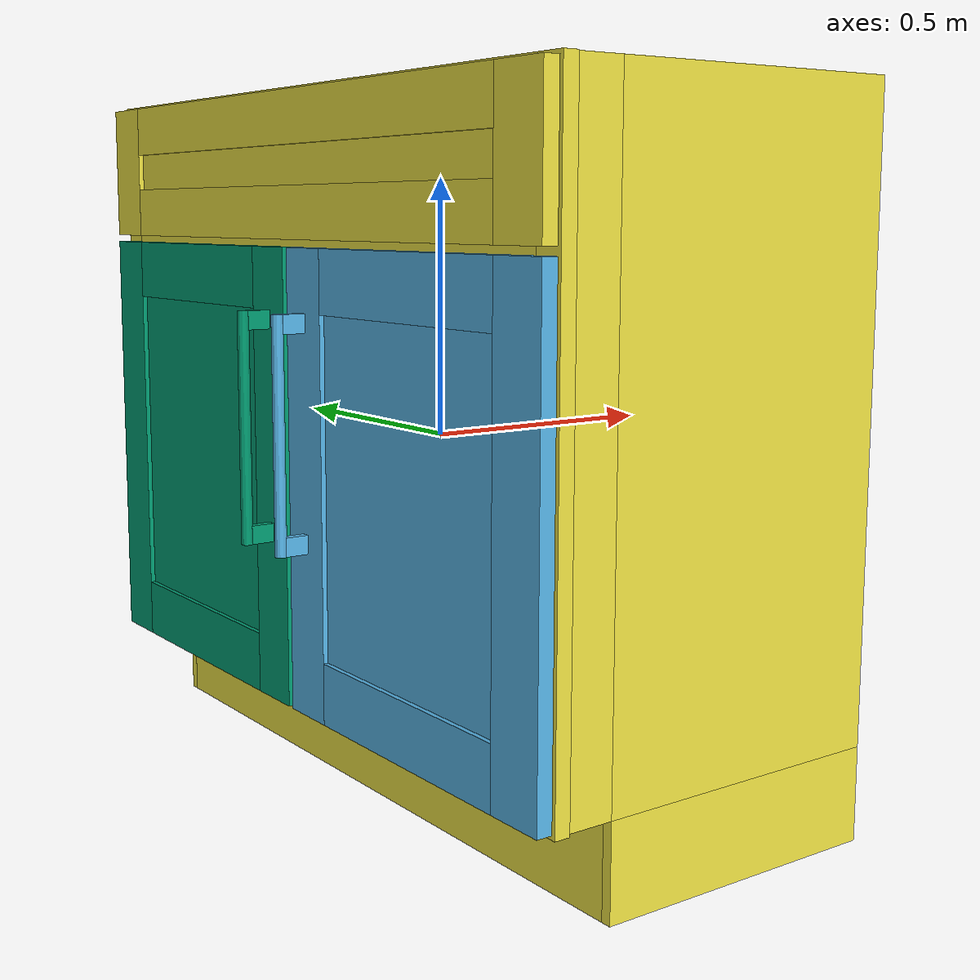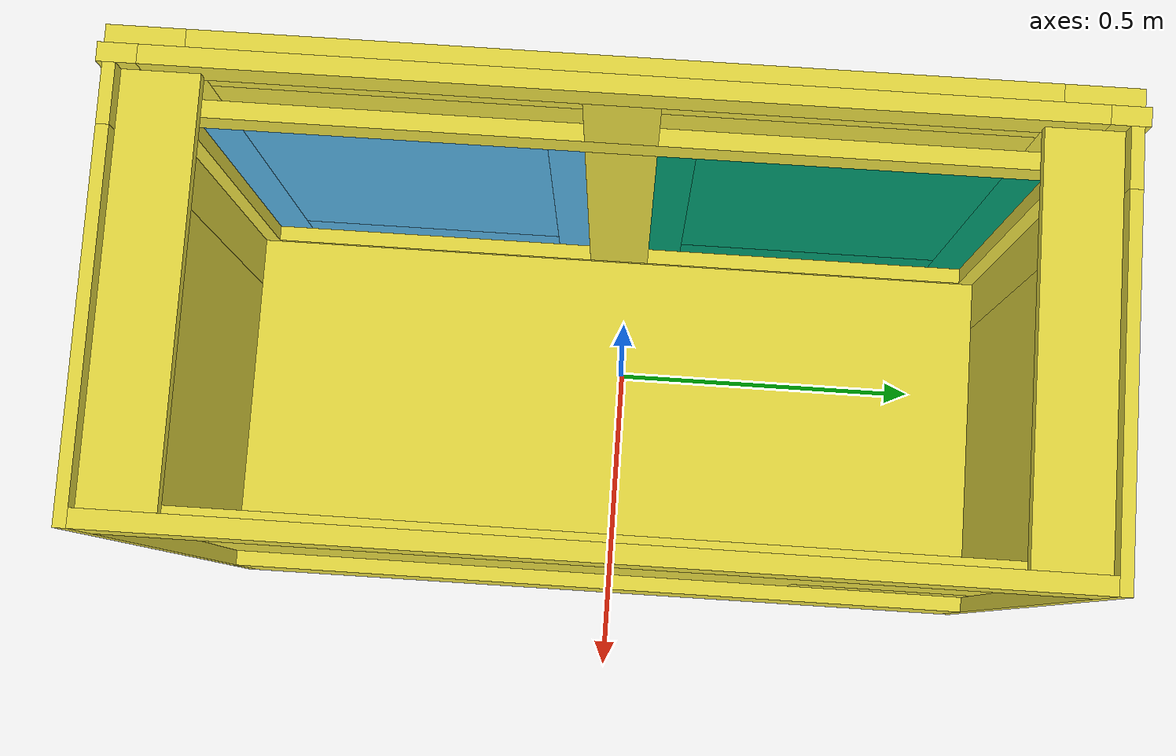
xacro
<?xml version="1.0" ?>
<robot name="cabinet_0" xmlns:xacro="http://ros.org/wiki/xacro">
	<xacro:macro name="default_inertial" params="mass">
    	<inertial>
      		<mass value="${mass}" />
      		<inertia ixx="1.0" ixy="0.0" ixz="0.0" iyy="1.0" iyz="0.0" izz="1.0" />
    	</inertial>
  	</xacro:macro>
	<link name="link"/>
	<link name="link_0">
		<visual name="cabinet_door_surface-11">
			<origin xyz="-0.7628867416512489 -0.6287140250205994 -0.33081486779329544"/>
			<geometry>
				<mesh filename="file://$(find instruct_to_policy)/models/cabinet_0/textured_objs/original-50.obj" />
			</geometry>
		</visual>
		<visual name="cabinet_door_surface-11">
			<origin xyz="-0.7628867416512489 -0.6287140250205994 -0.33081486779329544"/>
			<geometry>
				<mesh filename="file://$(find instruct_to_policy)/models/cabinet_0/textured_objs/original-45.obj"/>
			</geometry>
		</visual>
		<visual name="cabinet_door_surface-11">
			<origin xyz="-0.7628867416512489 -0.6287140250205994 -0.33081486779329544"/>
			<geometry>
				<mesh filename="file://$(find instruct_to_policy)/models/cabinet_0/textured_objs/original-47.obj"/>
			</geometry>
		</visual>
		<visual name="cabinet_door_surface-11">
			<origin xyz="-0.7628867416512489 -0.6287140250205994 -0.33081486779329544"/>
			<geometry>
				<mesh filename="file://$(find instruct_to_policy)/models/cabinet_0/textured_objs/original-46.obj"/>
			</geometry>
		</visual>
		<visual name="cabinet_door_surface-11">
			<origin xyz="-0.7628867416512489 -0.6287140250205994 -0.33081486779329544"/>
			<geometry>
				<mesh filename="file://$(find instruct_to_policy)/models/cabinet_0/textured_objs/original-48.obj"/>
			</geometry>
		</visual>
		<visual name="cabinet_door_surface-11">
			<origin xyz="-0.7628867416512489 -0.6287140250205994 -0.33081486779329544"/>
			<geometry>
				<mesh filename="file://$(find instruct_to_policy)/models/cabinet_0/textured_objs/original-51.obj"/>
			</geometry>
		</visual>
		<visual name="handle-12">
			<origin xyz="-0.7628867416512489 -0.6287140250205994 -0.33081486779329544"/>
			<geometry>
				<mesh filename="file://$(find instruct_to_policy)/models/cabinet_0/textured_objs/original-53.obj"/>
			</geometry>
		</visual>
		<visual name="handle-12">
			<origin xyz="-0.7628867416512489 -0.6287140250205994 -0.33081486779329544"/>
			<geometry>
				<mesh filename="file://$(find instruct_to_policy)/models/cabinet_0/textured_objs/original-55.obj"/>
			</geometry>
		</visual>
		<visual name="handle-12">
			<origin xyz="-0.7628867416512489 -0.6287140250205994 -0.33081486779329544"/>
			<geometry>
				<mesh filename="file://$(find instruct_to_policy)/models/cabinet_0/textured_objs/original-54.obj"/>
			</geometry>
		</visual>
		<collision>
			<origin xyz="-0.7628867416512489 -0.6287140250205994 -0.33081486779329544"/>
			<geometry>
				<mesh filename="file://$(find instruct_to_policy)/models/cabinet_0/textured_objs/original-50.obj"/>
			</geometry>
		</collision>
		<collision>
			<origin xyz="-0.7628867416512489 -0.6287140250205994 -0.33081486779329544"/>
			<geometry>
				<mesh filename="file://$(find instruct_to_policy)/models/cabinet_0/textured_objs/original-45.obj"/>
			</geometry>
		</collision>
		<collision>
			<origin xyz="-0.7628867416512489 -0.6287140250205994 -0.33081486779329544"/>
			<geometry>
				<mesh filename="file://$(find instruct_to_policy)/models/cabinet_0/textured_objs/original-47.obj"/>
			</geometry>
		</collision>
		<collision>
			<origin xyz="-0.7628867416512489 -0.6287140250205994 -0.33081486779329544"/>
			<geometry>
				<mesh filename="file://$(find instruct_to_policy)/models/cabinet_0/textured_objs/original-46.obj"/>
			</geometry>
		</collision>
		<collision>
			<origin xyz="-0.7628867416512489 -0.6287140250205994 -0.33081486779329544"/>
			<geometry>
				<mesh filename="file://$(find instruct_to_policy)/models/cabinet_0/textured_objs/original-48.obj"/>
			</geometry>
		</collision>
		<collision>
			<origin xyz="-0.7628867416512489 -0.6287140250205994 -0.33081486779329544"/>
			<geometry>
				<mesh filename="file://$(find instruct_to_policy)/models/cabinet_0/textured_objs/original-51.obj"/>
			</geometry>
		</collision>
		<collision>
			<origin xyz="-0.7628867416512489 -0.6287140250205994 -0.33081486779329544"/>
			<geometry>
				<mesh filename="file://$(find instruct_to_policy)/models/cabinet_0/textured_objs/original-53.obj"/>
			</geometry>
		</collision>
		<collision>
			<origin xyz="-0.7628867416512489 -0.6287140250205994 -0.33081486779329544"/>
			<geometry>
				<mesh filename="file://$(find instruct_to_policy)/models/cabinet_0/textured_objs/original-55.obj"/>
			</geometry>
		</collision>
		<collision>
			<origin xyz="-0.7628867416512489 -0.6287140250205994 -0.33081486779329544"/>
			<geometry>
				<mesh filename="file://$(find instruct_to_policy)/models/cabinet_0/textured_objs/original-54.obj"/>
			</geometry>
		</collision>
		<xacro:default_inertial mass="3"/>
	</link>
	<joint name="joint_0" type="revolute">
		<origin xyz="0.7628867416512489 0.6287140250205994 0.33081486779329544"/>
		<axis xyz="0 1 0"/>
		<child link="link_0"/>
		<parent link="link_2"/>
		<limit effort="1000.0" lower="0.0" upper="2.0943951023931953" velocity="0.5"/>
	</joint>
	<link name="link_1">
		<visual name="cabinet_door_surface-9">
			<origin xyz="0.7198775116199819 -0.6502609848976135 -0.33207040479653493"/>
			<geometry>
				<mesh filename="file://$(find instruct_to_policy)/models/cabinet_0/textured_objs/original-34.obj"/>
			</geometry>
		</visual>
		<visual name="cabinet_door_surface-9">
			<origin xyz="0.7198775116199819 -0.6502609848976135 -0.33207040479653493"/>
			<geometry>
				<mesh filename="file://$(find instruct_to_policy)/models/cabinet_0/textured_objs/original-39.obj"/>
			</geometry>
		</visual>
		<visual name="cabinet_door_surface-9">
			<origin xyz="0.7198775116199819 -0.6502609848976135 -0.33207040479653493"/>
			<geometry>
				<mesh filename="file://$(find instruct_to_policy)/models/cabinet_0/textured_objs/original-33.obj"/>
			</geometry>
		</visual>
		<visual name="cabinet_door_surface-9">
			<origin xyz="0.7198775116199819 -0.6502609848976135 -0.33207040479653493"/>
			<geometry>
				<mesh filename="file://$(find instruct_to_policy)/models/cabinet_0/textured_objs/original-36.obj"/>
			</geometry>
		</visual>
		<visual name="cabinet_door_surface-9">
			<origin xyz="0.7198775116199819 -0.6502609848976135 -0.33207040479653493"/>
			<geometry>
				<mesh filename="file://$(find instruct_to_policy)/models/cabinet_0/textured_objs/original-35.obj"/>
			</geometry>
		</visual>
		<visual name="cabinet_door_surface-9">
			<origin xyz="0.7198775116199819 -0.6502609848976135 -0.33207040479653493"/>
			<geometry>
				<mesh filename="file://$(find instruct_to_policy)/models/cabinet_0/textured_objs/original-38.obj"/>
			</geometry>
		</visual>
		<visual name="handle-10">
			<origin xyz="0.7198775116199819 -0.6502609848976135 -0.33207040479653493"/>
			<geometry>
				<mesh filename="file://$(find instruct_to_policy)/models/cabinet_0/textured_objs/original-41.obj"/>
			</geometry>
		</visual>
		<visual name="handle-10">
			<origin xyz="0.7198775116199819 -0.6502609848976135 -0.33207040479653493"/>
			<geometry>
				<mesh filename="file://$(find instruct_to_policy)/models/cabinet_0/textured_objs/original-43.obj"/>
			</geometry>
		</visual>
		<visual name="handle-10">
			<origin xyz="0.7198775116199819 -0.6502609848976135 -0.33207040479653493"/>
			<geometry>
				<mesh filename="file://$(find instruct_to_policy)/models/cabinet_0/textured_objs/original-42.obj"/>
			</geometry>
		</visual>
		<collision>
			<origin xyz="0.7198775116199819 -0.6502609848976135 -0.33207040479653493"/>
			<geometry>
				<mesh filename="file://$(find instruct_to_policy)/models/cabinet_0/textured_objs/original-34.obj"/>
			</geometry>
		</collision>
		<collision>
			<origin xyz="0.7198775116199819 -0.6502609848976135 -0.33207040479653493"/>
			<geometry>
				<mesh filename="file://$(find instruct_to_policy)/models/cabinet_0/textured_objs/original-39.obj"/>
			</geometry>
		</collision>
		<collision>
			<origin xyz="0.7198775116199819 -0.6502609848976135 -0.33207040479653493"/>
			<geometry>
				<mesh filename="file://$(find instruct_to_policy)/models/cabinet_0/textured_objs/original-33.obj"/>
			</geometry>
		</collision>
		<collision>
			<origin xyz="0.7198775116199819 -0.6502609848976135 -0.33207040479653493"/>
			<geometry>
				<mesh filename="file://$(find instruct_to_policy)/models/cabinet_0/textured_objs/original-36.obj"/>
			</geometry>
		</collision>
		<collision>
			<origin xyz="0.7198775116199819 -0.6502609848976135 -0.33207040479653493"/>
			<geometry>
				<mesh filename="file://$(find instruct_to_policy)/models/cabinet_0/textured_objs/original-35.obj"/>
			</geometry>
		</collision>
		<collision>
			<origin xyz="0.7198775116199819 -0.6502609848976135 -0.33207040479653493"/>
			<geometry>
				<mesh filename="file://$(find instruct_to_policy)/models/cabinet_0/textured_objs/original-38.obj"/>
			</geometry>
		</collision>
		<collision>
			<origin xyz="0.7198775116199819 -0.6502609848976135 -0.33207040479653493"/>
			<geometry>
				<mesh filename="file://$(find instruct_to_policy)/models/cabinet_0/textured_objs/original-41.obj"/>
			</geometry>
		</collision>
		<collision>
			<origin xyz="0.7198775116199819 -0.6502609848976135 -0.33207040479653493"/>
			<geometry>
				<mesh filename="file://$(find instruct_to_policy)/models/cabinet_0/textured_objs/original-43.obj"/>
			</geometry>
		</collision>
		<collision>
			<origin xyz="0.7198775116199819 -0.6502609848976135 -0.33207040479653493"/>
			<geometry>
				<mesh filename="file://$(find instruct_to_policy)/models/cabinet_0/textured_objs/original-42.obj"/>
			</geometry>
		</collision>
		<xacro:default_inertial mass="3"/>
	</link>
	<joint name="joint_1" type="revolute">
		<origin xyz="-0.7198775116199819 0.6502609848976135 0.33207040479653493"/>
		<axis xyz="0 -0.9999999999999999 0"/>
		<child link="link_1"/>
		<parent link="link_2"/>
		<limit effort="1000.0" lower="-0.0" upper="2.0943951023931953" velocity="0.5"/>
	</joint>
	<link name="link_2">
		<visual name="vertical_side_panel-18">
			<origin xyz="0 0 0"/>
			<geometry>
				<mesh filename="file://$(find instruct_to_policy)/models/cabinet_0/textured_objs/original-15.obj"/>
			</geometry>
		</visual>
		<visual name="vertical_side_panel-18">
			<origin xyz="0 0 0"/>
			<geometry>
				<mesh filename="file://$(find instruct_to_policy)/models/cabinet_0/textured_objs/original-14.obj"/>
			</geometry>
		</visual>
		<visual name="vertical_side_panel-19">
			<origin xyz="0 0 0"/>
			<geometry>
				<mesh filename="file://$(find instruct_to_policy)/models/cabinet_0/textured_objs/original-11.obj"/>
			</geometry>
		</visual>
		<visual name="vertical_side_panel-19">
			<origin xyz="0 0 0"/>
			<geometry>
				<mesh filename="file://$(find instruct_to_policy)/models/cabinet_0/textured_objs/original-10.obj"/>
			</geometry>
		</visual>
		<visual name="back_panel-20">
			<origin xyz="0 0 0"/>
			<geometry>
				<mesh filename="file://$(find instruct_to_policy)/models/cabinet_0/textured_objs/original-5.obj"/>
			</geometry>
		</visual>
		<visual name="bottom_panel-21">
			<origin xyz="0 0 0"/>
			<geometry>
				<mesh filename="file://$(find instruct_to_policy)/models/cabinet_0/textured_objs/original-2.obj"/>
			</geometry>
		</visual>
		<visual name="frame_vertical_bar-22">
			<origin xyz="0 0 0"/>
			<geometry>
				<mesh filename="file://$(find instruct_to_policy)/models/cabinet_0/textured_objs/original-3.obj"/>
			</geometry>
		</visual>
		<visual name="frame_vertical_bar-23">
			<origin xyz="0 0 0"/>
			<geometry>
				<mesh filename="file://$(find instruct_to_policy)/models/cabinet_0/textured_objs/original-7.obj"/>
			</geometry>
		</visual>
		<visual name="frame_vertical_bar-24">
			<origin xyz="0 0 0"/>
			<geometry>
				<mesh filename="file://$(find instruct_to_policy)/models/cabinet_0/textured_objs/original-17.obj"/>
			</geometry>
		</visual>
		<visual name="frame_vertical_bar-24">
			<origin xyz="0 0 0"/>
			<geometry>
				<mesh filename="file://$(find instruct_to_policy)/models/cabinet_0/textured_objs/original-23.obj"/>
			</geometry>
		</visual>
		<visual name="frame_horizontal_bar-25">
			<origin xyz="0 0 0"/>
			<geometry>
				<mesh filename="file://$(find instruct_to_policy)/models/cabinet_0/textured_objs/original-21.obj"/>
			</geometry>
		</visual>
		<visual name="frame_horizontal_bar-26">
			<origin xyz="0 0 0"/>
			<geometry>
				<mesh filename="file://$(find instruct_to_policy)/models/cabinet_0/textured_objs/original-22.obj"/>
			</geometry>
		</visual>
		<visual name="frame_horizontal_bar-27">
			<origin xyz="0 0 0"/>
			<geometry>
				<mesh filename="file://$(find instruct_to_policy)/models/cabinet_0/textured_objs/original-18.obj"/>
			</geometry>
		</visual>
		<visual name="frame_horizontal_bar-28">
			<origin xyz="0 0 0"/>
			<geometry>
				<mesh filename="file://$(find instruct_to_policy)/models/cabinet_0/textured_objs/original-4.obj"/>
			</geometry>
		</visual>
		<visual name="frame_horizontal_bar-29">
			<origin xyz="0 0 0"/>
			<geometry>
				<mesh filename="file://$(find instruct_to_policy)/models/cabinet_0/textured_objs/original-6.obj"/>
			</geometry>
		</visual>
		<visual name="other_leaf-31">
			<origin xyz="0 0 0"/>
			<geometry>
				<mesh filename="file://$(find instruct_to_policy)/models/cabinet_0/textured_objs/original-56.obj"/>
			</geometry>
		</visual>
		<visual name="frame_horizontal_bar-32">
			<origin xyz="0 0 0"/>
			<geometry>
				<mesh filename="file://$(find instruct_to_policy)/models/cabinet_0/textured_objs/original-8.obj"/>
			</geometry>
		</visual>
		<visual name="vertical_front_panel-33">
			<origin xyz="0 0 0"/>
			<geometry>
				<mesh filename="file://$(find instruct_to_policy)/models/cabinet_0/textured_objs/original-31.obj"/>
			</geometry>
		</visual>
		<visual name="vertical_front_panel-33">
			<origin xyz="0 0 0"/>
			<geometry>
				<mesh filename="file://$(find instruct_to_policy)/models/cabinet_0/textured_objs/original-27.obj"/>
			</geometry>
		</visual>
		<visual name="vertical_front_panel-33">
			<origin xyz="0 0 0"/>
			<geometry>
				<mesh filename="file://$(find instruct_to_policy)/models/cabinet_0/textured_objs/original-26.obj"/>
			</geometry>
		</visual>
		<visual name="vertical_front_panel-33">
			<origin xyz="0 0 0"/>
			<geometry>
				<mesh filename="file://$(find instruct_to_policy)/models/cabinet_0/textured_objs/original-25.obj"/>
			</geometry>
		</visual>
		<visual name="vertical_front_panel-33">
			<origin xyz="0 0 0"/>
			<geometry>
				<mesh filename="file://$(find instruct_to_policy)/models/cabinet_0/textured_objs/original-28.obj"/>
			</geometry>
		</visual>
		<visual name="vertical_front_panel-33">
			<origin xyz="0 0 0"/>
			<geometry>
				<mesh filename="file://$(find instruct_to_policy)/models/cabinet_0/textured_objs/original-30.obj"/>
			</geometry>
		</visual>
		<visual name="base_side_panel-14">
			<origin xyz="0 0 0"/>
			<geometry>
				<mesh filename="file://$(find instruct_to_policy)/models/cabinet_0/textured_objs/original-16.obj"/>
			</geometry>
		</visual>
		<visual name="base_side_panel-15">
			<origin xyz="0 0 0"/>
			<geometry>
				<mesh filename="file://$(find instruct_to_policy)/models/cabinet_0/textured_objs/original-19.obj"/>
			</geometry>
		</visual>
		<visual name="base_side_panel-16">
			<origin xyz="0 0 0"/>
			<geometry>
				<mesh filename="file://$(find instruct_to_policy)/models/cabinet_0/textured_objs/original-12.obj"/>
			</geometry>
		</visual>
		<visual name="base_side_panel-17">
			<origin xyz="0 0 0"/>
			<geometry>
				<mesh filename="file://$(find instruct_to_policy)/models/cabinet_0/textured_objs/original-20.obj"/>
			</geometry>
		</visual>
		<collision>
			<origin xyz="0 0 0"/>
			<geometry>
				<mesh filename="file://$(find instruct_to_policy)/models/cabinet_0/textured_objs/original-15.obj"/>
			</geometry>
		</collision>
		<collision>
			<origin xyz="0 0 0"/>
			<geometry>
				<mesh filename="file://$(find instruct_to_policy)/models/cabinet_0/textured_objs/original-14.obj"/>
			</geometry>
		</collision>
		<collision>
			<origin xyz="0 0 0"/>
			<geometry>
				<mesh filename="file://$(find instruct_to_policy)/models/cabinet_0/textured_objs/original-11.obj"/>
			</geometry>
		</collision>
		<collision>
			<origin xyz="0 0 0"/>
			<geometry>
				<mesh filename="file://$(find instruct_to_policy)/models/cabinet_0/textured_objs/original-10.obj"/>
			</geometry>
		</collision>
		<collision>
			<origin xyz="0 0 0"/>
			<geometry>
				<mesh filename="file://$(find instruct_to_policy)/models/cabinet_0/textured_objs/original-5.obj"/>
			</geometry>
		</collision>
		<collision>
			<origin xyz="0 0 0"/>
			<geometry>
				<mesh filename="file://$(find instruct_to_policy)/models/cabinet_0/textured_objs/original-2.obj"/>
			</geometry>
		</collision>
		<collision>
			<origin xyz="0 0 0"/>
			<geometry>
				<mesh filename="file://$(find instruct_to_policy)/models/cabinet_0/textured_objs/original-3.obj"/>
			</geometry>
		</collision>
		<collision>
			<origin xyz="0 0 0"/>
			<geometry>
				<mesh filename="file://$(find instruct_to_policy)/models/cabinet_0/textured_objs/original-7.obj"/>
			</geometry>
		</collision>
		<collision>
			<origin xyz="0 0 0"/>
			<geometry>
				<mesh filename="file://$(find instruct_to_policy)/models/cabinet_0/textured_objs/original-17.obj"/>
			</geometry>
		</collision>
		<collision>
			<origin xyz="0 0 0"/>
			<geometry>
				<mesh filename="file://$(find instruct_to_policy)/models/cabinet_0/textured_objs/original-23.obj"/>
			</geometry>
		</collision>
		<collision>
			<origin xyz="0 0 0"/>
			<geometry>
				<mesh filename="file://$(find instruct_to_policy)/models/cabinet_0/textured_objs/original-21.obj"/>
			</geometry>
		</collision>
		<collision>
			<origin xyz="0 0 0"/>
			<geometry>
				<mesh filename="file://$(find instruct_to_policy)/models/cabinet_0/textured_objs/original-22.obj"/>
			</geometry>
		</collision>
		<collision>
			<origin xyz="0 0 0"/>
			<geometry>
				<mesh filename="file://$(find instruct_to_policy)/models/cabinet_0/textured_objs/original-18.obj"/>
			</geometry>
		</collision>
		<collision>
			<origin xyz="0 0 0"/>
			<geometry>
				<mesh filename="file://$(find instruct_to_policy)/models/cabinet_0/textured_objs/original-4.obj"/>
			</geometry>
		</collision>
		<collision>
			<origin xyz="0 0 0"/>
			<geometry>
				<mesh filename="file://$(find instruct_to_policy)/models/cabinet_0/textured_objs/original-6.obj"/>
			</geometry>
		</collision>
		<collision>
			<origin xyz="0 0 0"/>
			<geometry>
				<mesh filename="file://$(find instruct_to_policy)/models/cabinet_0/textured_objs/original-56.obj"/>
			</geometry>
		</collision>
		<collision>
			<origin xyz="0 0 0"/>
			<geometry>
				<mesh filename="file://$(find instruct_to_policy)/models/cabinet_0/textured_objs/original-8.obj"/>
			</geometry>
		</collision>
		<collision>
			<origin xyz="0 0 0"/>
			<geometry>
				<mesh filename="file://$(find instruct_to_policy)/models/cabinet_0/textured_objs/original-31.obj"/>
			</geometry>
		</collision>
		<collision>
			<origin xyz="0 0 0"/>
			<geometry>
				<mesh filename="file://$(find instruct_to_policy)/models/cabinet_0/textured_objs/original-27.obj"/>
			</geometry>
		</collision>
		<collision>
			<origin xyz="0 0 0"/>
			<geometry>
				<mesh filename="file://$(find instruct_to_policy)/models/cabinet_0/textured_objs/original-26.obj"/>
			</geometry>
		</collision>
		<collision>
			<origin xyz="0 0 0"/>
			<geometry>
				<mesh filename="file://$(find instruct_to_policy)/models/cabinet_0/textured_objs/original-25.obj"/>
			</geometry>
		</collision>
		<collision>
			<origin xyz="0 0 0"/>
			<geometry>
				<mesh filename="file://$(find instruct_to_policy)/models/cabinet_0/textured_objs/original-28.obj"/>
			</geometry>
		</collision>
		<collision>
			<origin xyz="0 0 0"/>
			<geometry>
				<mesh filename="file://$(find instruct_to_policy)/models/cabinet_0/textured_objs/original-30.obj"/>
			</geometry>
		</collision>
		<collision>
			<origin xyz="0 0 0"/>
			<geometry>
				<mesh filename="file://$(find instruct_to_policy)/models/cabinet_0/textured_objs/original-16.obj"/>
			</geometry>
		</collision>
		<collision>
			<origin xyz="0 0 0"/>
			<geometry>
				<mesh filename="file://$(find instruct_to_policy)/models/cabinet_0/textured_objs/original-19.obj"/>
			</geometry>
		</collision>
		<collision>
			<origin xyz="0 0 0"/>
			<geometry>
				<mesh filename="file://$(find instruct_to_policy)/models/cabinet_0/textured_objs/original-12.obj"/>
			</geometry>
		</collision>
		<collision>
			<origin xyz="0 0 0"/>
			<geometry>
				<mesh filename="file://$(find instruct_to_policy)/models/cabinet_0/textured_objs/original-20.obj"/>
			</geometry>
		</collision>
		<xacro:default_inertial mass="10"/>
	</link>
	<joint name="joint_2" type="fixed">
		<origin rpy="1.570796326794897 0 -1.570796326794897" xyz="0 0 0"/>
		<child link="link_2"/>
		<parent link="link"/>
	</joint>
</robot>
